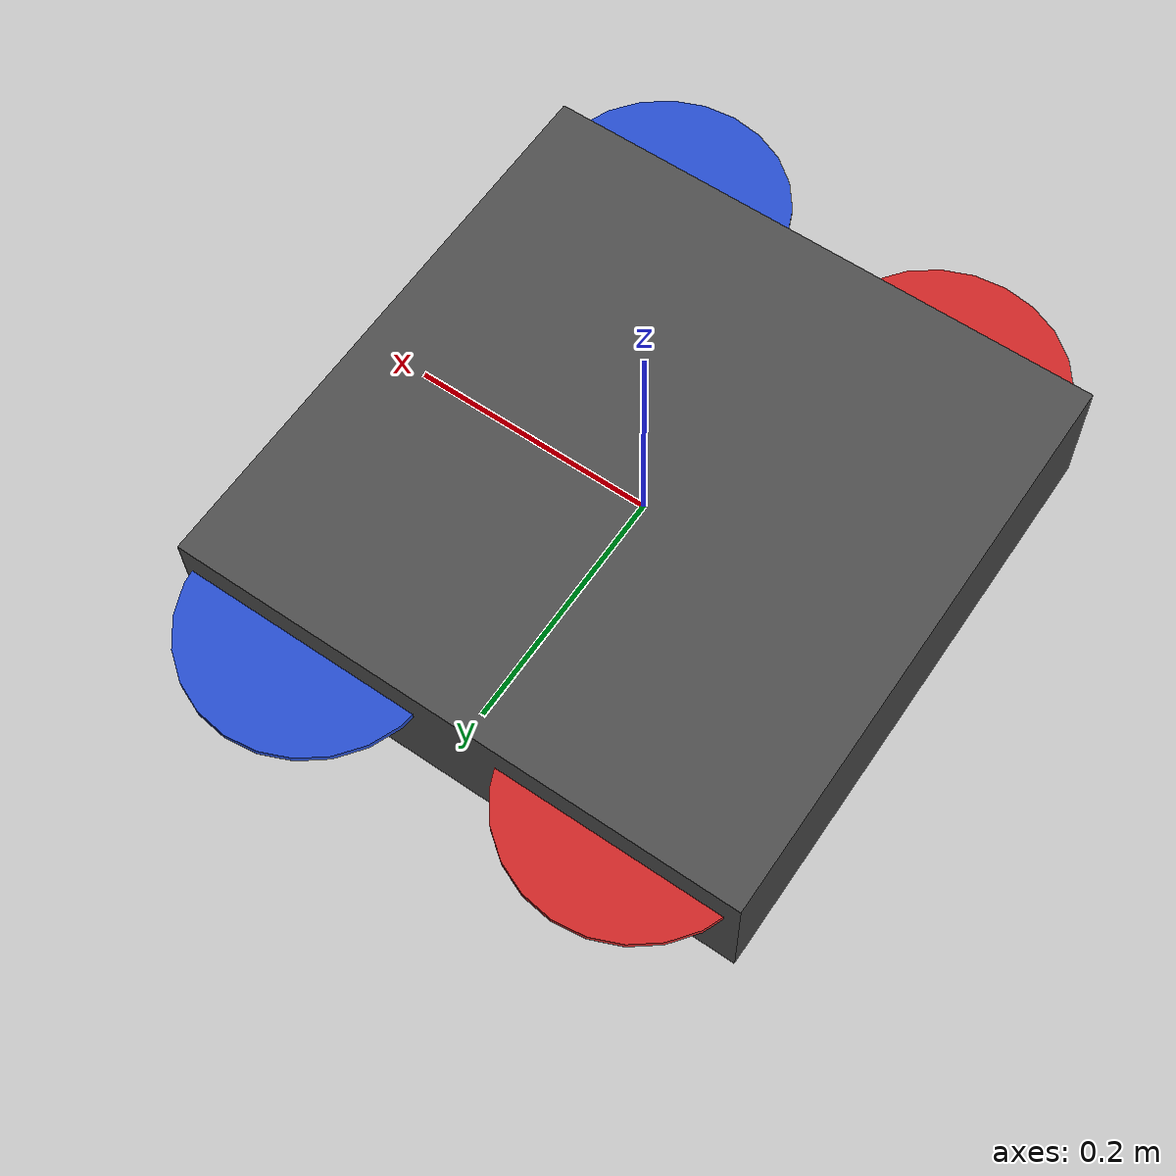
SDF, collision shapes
<sdf version='1.7'>
  <model name='iris'>
    <link name='/base_link'>
      <inertial>
        <pose>0 0 0 0 -0 0</pose>
        <mass>1.5</mass>
        <inertia>
          <ixx>0.029125</ixx>
          <ixy>0</ixy>
          <ixz>0</ixz>
          <iyy>0.029125</iyy>
          <iyz>0</iyz>
          <izz>0.055225</izz>
        </inertia>
      </inertial>
      <collision name='/base_link_inertia_collision'>
        <pose>0 0 0 0 -0 0</pose>
        <geometry>
          <box>
            <size>0.47 0.47 0.11</size>
          </box>
        </geometry>
        <surface>
          <contact>
            <ode/>
          </contact>
          <friction>
            <ode/>
          </friction>
        </surface>
      </collision>
      <visual name='/base_link_inertia_visual'>
        <pose>0 0 0 0 -0 0</pose>
        <geometry>
          <mesh>
            <scale>1 1 1</scale>
            <uri>/home2/arwillis/uncc_wind_control/ros_image/ros_ws/src/gazebo_blast3d/xacro/meshes/iris.dae</uri>
          </mesh>
        </geometry>
        <material>
          <script>
            <name>Gazebo/DarkGrey</name>
            <uri>file://media/materials/scripts/gazebo.material</uri>
          </script>
        </material>
      </visual>
    </link>
    <joint name='/rotor_0_joint' type='revolute'>
      <pose relative_to='/base_link'>0.13 -0.22 0.023 0 -0 0</pose>
      <parent>/base_link</parent>
      <child>/rotor_0</child>
      <axis>
        <xyz>0 0 1</xyz>
        <limit>
          <lower>-1e+16</lower>
          <upper>1e+16</upper>
        </limit>
        <dynamics>
          <spring_reference>0</spring_reference>
          <spring_stiffness>0</spring_stiffness>
        </dynamics>
      </axis>
    </joint>
    <link name='/rotor_0'>
      <pose relative_to='/rotor_0_joint'>0 0 0 0 -0 0</pose>
      <inertial>
        <pose>0 0 0 0 -0 0</pose>
        <mass>0.005</mass>
        <inertia>
          <ixx>9.75e-07</ixx>
          <ixy>0</ixy>
          <ixz>0</ixz>
          <iyy>0.000273104</iyy>
          <iyz>0</iyz>
          <izz>0.000278998</izz>
        </inertia>
      </inertial>
      <collision name='/rotor_0_collision'>
        <pose>0 0 0 0 -0 0</pose>
        <geometry>
          <cylinder>
            <length>0.005</length>
            <radius>0.1</radius>
          </cylinder>
        </geometry>
        <surface>
          <contact>
            <ode/>
          </contact>
          <friction>
            <ode/>
          </friction>
        </surface>
      </collision>
      <visual name='/rotor_0_visual'>
        <pose>0 0 0 0 -0 0</pose>
        <geometry>
          <mesh>
            <scale>0.1 0.1 0.1</scale>
            <uri>/home2/arwillis/uncc_wind_control/ros_image/ros_ws/src/gazebo_px4_drone/xacro/meshes/propeller_ccw.dae</uri>
          </mesh>
        </geometry>
        <material>
          <script>
            <name>Gazebo/Blue</name>
            <uri>file://media/materials/scripts/gazebo.material</uri>
          </script>
        </material>
      </visual>
    </link>
    <joint name='/rotor_1_joint' type='revolute'>
      <pose relative_to='/base_link'>-0.13 0.2 0.023 0 -0 0</pose>
      <parent>/base_link</parent>
      <child>/rotor_1</child>
      <axis>
        <xyz>0 0 1</xyz>
        <limit>
          <lower>-1e+16</lower>
          <upper>1e+16</upper>
        </limit>
        <dynamics>
          <spring_reference>0</spring_reference>
          <spring_stiffness>0</spring_stiffness>
        </dynamics>
      </axis>
    </joint>
    <link name='/rotor_1'>
      <pose relative_to='/rotor_1_joint'>0 0 0 0 -0 0</pose>
      <inertial>
        <pose>0 0 0 0 -0 0</pose>
        <mass>0.005</mass>
        <inertia>
          <ixx>9.75e-07</ixx>
          <ixy>0</ixy>
          <ixz>0</ixz>
          <iyy>0.000273104</iyy>
          <iyz>0</iyz>
          <izz>0.000278998</izz>
        </inertia>
      </inertial>
      <collision name='/rotor_1_collision'>
        <pose>0 0 0 0 -0 0</pose>
        <geometry>
          <cylinder>
            <length>0.005</length>
            <radius>0.1</radius>
          </cylinder>
        </geometry>
        <surface>
          <contact>
            <ode/>
          </contact>
          <friction>
            <ode/>
          </friction>
        </surface>
      </collision>
      <visual name='/rotor_1_visual'>
        <pose>0 0 0 0 -0 0</pose>
        <geometry>
          <mesh>
            <scale>0.1 0.1 0.1</scale>
            <uri>/home2/arwillis/uncc_wind_control/ros_image/ros_ws/src/gazebo_px4_drone/xacro/meshes/propeller_ccw.dae</uri>
          </mesh>
        </geometry>
        <material>
          <script>
            <name>Gazebo/Red</name>
            <uri>file://media/materials/scripts/gazebo.material</uri>
          </script>
        </material>
      </visual>
    </link>
    <joint name='/rotor_2_joint' type='revolute'>
      <pose relative_to='/base_link'>0.13 0.22 0.023 0 -0 0</pose>
      <parent>/base_link</parent>
      <child>/rotor_2</child>
      <axis>
        <xyz>0 0 1</xyz>
        <limit>
          <lower>-1e+16</lower>
          <upper>1e+16</upper>
        </limit>
        <dynamics>
          <spring_reference>0</spring_reference>
          <spring_stiffness>0</spring_stiffness>
        </dynamics>
      </axis>
    </joint>
    <link name='/rotor_2'>
      <pose relative_to='/rotor_2_joint'>0 0 0 0 -0 0</pose>
      <inertial>
        <pose>0 0 0 0 -0 0</pose>
        <mass>0.005</mass>
        <inertia>
          <ixx>9.75e-07</ixx>
          <ixy>0</ixy>
          <ixz>0</ixz>
          <iyy>0.000273104</iyy>
          <iyz>0</iyz>
          <izz>0.000278998</izz>
        </inertia>
      </inertial>
      <collision name='/rotor_2_collision'>
        <pose>0 0 0 0 -0 0</pose>
        <geometry>
          <cylinder>
            <length>0.005</length>
            <radius>0.1</radius>
          </cylinder>
        </geometry>
        <surface>
          <contact>
            <ode/>
          </contact>
          <friction>
            <ode/>
          </friction>
        </surface>
      </collision>
      <visual name='/rotor_2_visual'>
        <pose>0 0 0 0 -0 0</pose>
        <geometry>
          <mesh>
            <scale>0.1 0.1 0.1</scale>
            <uri>/home2/arwillis/uncc_wind_control/ros_image/ros_ws/src/gazebo_px4_drone/xacro/meshes/propeller_cw.dae</uri>
          </mesh>
        </geometry>
        <material>
          <script>
            <name>Gazebo/Blue</name>
            <uri>file://media/materials/scripts/gazebo.material</uri>
          </script>
        </material>
      </visual>
    </link>
    <joint name='/rotor_3_joint' type='revolute'>
      <pose relative_to='/base_link'>-0.13 -0.2 0.023 0 -0 0</pose>
      <parent>/base_link</parent>
      <child>/rotor_3</child>
      <axis>
        <xyz>0 0 1</xyz>
        <limit>
          <lower>-1e+16</lower>
          <upper>1e+16</upper>
        </limit>
        <dynamics>
          <spring_reference>0</spring_reference>
          <spring_stiffness>0</spring_stiffness>
        </dynamics>
      </axis>
    </joint>
    <link name='/rotor_3'>
      <pose relative_to='/rotor_3_joint'>0 0 0 0 -0 0</pose>
      <inertial>
        <pose>0 0 0 0 -0 0</pose>
        <mass>0.005</mass>
        <inertia>
          <ixx>9.75e-07</ixx>
          <ixy>0</ixy>
          <ixz>0</ixz>
          <iyy>0.000273104</iyy>
          <iyz>0</iyz>
          <izz>0.000278998</izz>
        </inertia>
      </inertial>
      <collision name='/rotor_3_collision'>
        <pose>0 0 0 0 -0 0</pose>
        <geometry>
          <cylinder>
            <length>0.005</length>
            <radius>0.1</radius>
          </cylinder>
        </geometry>
        <surface>
          <contact>
            <ode/>
          </contact>
          <friction>
            <ode/>
          </friction>
        </surface>
      </collision>
      <visual name='/rotor_3_visual'>
        <pose>0 0 0 0 -0 0</pose>
        <geometry>
          <mesh>
            <scale>0.1 0.1 0.1</scale>
            <uri>/home2/arwillis/uncc_wind_control/ros_image/ros_ws/src/gazebo_px4_drone/xacro/meshes/propeller_cw.dae</uri>
          </mesh>
        </geometry>
        <material>
          <script>
            <name>Gazebo/Red</name>
            <uri>file://media/materials/scripts/gazebo.material</uri>
          </script>
        </material>
      </visual>
    </link>
    <plugin name='multirotor_base_plugin' filename='libgazebo_multirotor_base_plugin.so'>
      <robotNamespace/>
      <linkName>/base_link</linkName>
      <rotorVelocitySlowdownSim>10</rotorVelocitySlowdownSim>
    </plugin>
    <plugin name='_front_right_motor_model' filename='libgazebo_motor_model.so'>
      <robotNamespace/>
      <jointName>/rotor_0_joint</jointName>
      <linkName>/rotor_0</linkName>
      <turningDirection>ccw</turningDirection>
      <timeConstantUp>0.0125</timeConstantUp>
      <timeConstantDown>0.025</timeConstantDown>
      <maxRotVelocity>1100</maxRotVelocity>
      <motorConstant>5.84e-06</motorConstant>
      <momentConstant>0.06</momentConstant>
      <commandSubTopic>/gazebo/command/motor_speed</commandSubTopic>
      <motorNumber>0</motorNumber>
      <rotorDragCoefficient>0.000175</rotorDragCoefficient>
      <rollingMomentCoefficient>1e-06</rollingMomentCoefficient>
      <motorSpeedPubTopic>motor_speed/0</motorSpeedPubTopic>
      <rotorVelocitySlowdownSim>10</rotorVelocitySlowdownSim>
    </plugin>
    <plugin name='_back_left_motor_model' filename='libgazebo_motor_model.so'>
      <robotNamespace/>
      <jointName>/rotor_1_joint</jointName>
      <linkName>/rotor_1</linkName>
      <turningDirection>ccw</turningDirection>
      <timeConstantUp>0.0125</timeConstantUp>
      <timeConstantDown>0.025</timeConstantDown>
      <maxRotVelocity>1100</maxRotVelocity>
      <motorConstant>5.84e-06</motorConstant>
      <momentConstant>0.06</momentConstant>
      <commandSubTopic>/gazebo/command/motor_speed</commandSubTopic>
      <motorNumber>1</motorNumber>
      <rotorDragCoefficient>0.000175</rotorDragCoefficient>
      <rollingMomentCoefficient>1e-06</rollingMomentCoefficient>
      <motorSpeedPubTopic>motor_speed/1</motorSpeedPubTopic>
      <rotorVelocitySlowdownSim>10</rotorVelocitySlowdownSim>
    </plugin>
    <plugin name='_front_left_motor_model' filename='libgazebo_motor_model.so'>
      <robotNamespace/>
      <jointName>/rotor_2_joint</jointName>
      <linkName>/rotor_2</linkName>
      <turningDirection>cw</turningDirection>
      <timeConstantUp>0.0125</timeConstantUp>
      <timeConstantDown>0.025</timeConstantDown>
      <maxRotVelocity>1100</maxRotVelocity>
      <motorConstant>5.84e-06</motorConstant>
      <momentConstant>0.06</momentConstant>
      <commandSubTopic>/gazebo/command/motor_speed</commandSubTopic>
      <motorNumber>2</motorNumber>
      <rotorDragCoefficient>0.000175</rotorDragCoefficient>
      <rollingMomentCoefficient>1e-06</rollingMomentCoefficient>
      <motorSpeedPubTopic>motor_speed/2</motorSpeedPubTopic>
      <rotorVelocitySlowdownSim>10</rotorVelocitySlowdownSim>
    </plugin>
    <plugin name='_back_right_motor_model' filename='libgazebo_motor_model.so'>
      <robotNamespace/>
      <jointName>/rotor_3_joint</jointName>
      <linkName>/rotor_3</linkName>
      <turningDirection>cw</turningDirection>
      <timeConstantUp>0.0125</timeConstantUp>
      <timeConstantDown>0.025</timeConstantDown>
      <maxRotVelocity>1100</maxRotVelocity>
      <motorConstant>5.84e-06</motorConstant>
      <momentConstant>0.06</momentConstant>
      <commandSubTopic>/gazebo/command/motor_speed</commandSubTopic>
      <motorNumber>3</motorNumber>
      <rotorDragCoefficient>0.000175</rotorDragCoefficient>
      <rollingMomentCoefficient>1e-06</rollingMomentCoefficient>
      <motorSpeedPubTopic>motor_speed/3</motorSpeedPubTopic>
      <rotorVelocitySlowdownSim>10</rotorVelocitySlowdownSim>
    </plugin>
    <link name='sensor_link'>
      <pose>0.09 0 -0.03 0 -0 0</pose>
      <inertial>
        <mass>1e-06</mass>
        <inertia>
          <ixx>1e-06</ixx>
          <ixy>0</ixy>
          <ixz>0</ixz>
          <iyy>1e-06</iyy>
          <iyz>0</iyz>
          <izz>1e-06</izz>
        </inertia>
      </inertial>
      <collision name='collision'>
        <geometry>
          <sphere>
            <radius>0.02</radius>
          </sphere>
        </geometry>
      </collision>
      <visual name='visual'>
        <geometry>
          <sphere>
            <radius>0.02</radius>
          </sphere>
        </geometry>
      </visual>
      <sensor name='ev_camera_1' type='camera'>
        <pose>0 0 0 0 -0 0</pose>
        <update_rate>5</update_rate>
        <always_on>1</always_on>
        <plugin name='event_camera_plugin' filename='libgazebo_blast3d_camera_plugin.so'>
          <blast3dVideoDataFolder>/home2/arwillis/uncc_wind_control/ros_image/ros_ws/src/gazebo_blast3d/datasets/video</blast3dVideoDataFolder>
          <blast3dImageTopic>event_image</blast3dImageTopic>
          <blast3dEventTopic>event_stream</blast3dEventTopic>
        </plugin>
      </sensor>
      <sensor name='microphone_1' type='sonar'>
        <pose>0 0 0 0 -0 0</pose>
        <update_rate>5</update_rate>
        <always_on>1</always_on>
        <plugin name='microphone_1_plugin' filename='libgazebo_blast3d_microphone_plugin.so'>
          <audioLinkTopic>audio</audioLinkTopic>
          <customAudioDataFolder>/home2/arwillis/uncc_wind_control/ros_image/ros_ws/src/gazebo_blast3d/datasets/audio</customAudioDataFolder>
        </plugin>
      </sensor>
    </link>
    <joint name='sensor_joint' type='fixed'>
      <child>sensor_link</child>
      <parent>/base_link</parent>
    </joint>
    <link name='/vis_body'>
      <inertial>
        <mass>1e-09</mass>
        <inertia>
          <ixx>1e-09</ixx>
          <ixy>0</ixy>
          <ixz>0</ixz>
          <iyy>1e-09</iyy>
          <iyz>0</iyz>
          <izz>1e-09</izz>
        </inertia>
        <pose>0 0 0 0 -0 0</pose>
      </inertial>
      <collision name='collision'>
        <geometry>
          <sphere>
            <radius>0.001</radius>
          </sphere>
        </geometry>
      </collision>
      <visual name='visual'>
        <geometry>
          <sphere>
            <radius>0.001</radius>
          </sphere>
        </geometry>
      </visual>
    </link>
    <joint name='/vis/base_joint' type='revolute'>
      <child>/vis_body</child>
      <parent>/base_link</parent>
      <axis>
        <xyz>1 0 0</xyz>
        <limit>
          <lower>0</lower>
          <upper>0</upper>
          <effort>0</effort>
          <velocity>0</velocity>
        </limit>
        <dynamics>
          <spring_reference>0</spring_reference>
          <spring_stiffness>0</spring_stiffness>
        </dynamics>
        <use_parent_model_frame>1</use_parent_model_frame>
      </axis>
    </joint>
    <static>0</static>
    <link name='/imu_link'>
      <pose>0 0 0.02 0 -0 0</pose>
      <inertial>
        <pose>0 0 0 0 -0 0</pose>
        <mass>0.015</mass>
        <inertia>
          <ixx>1e-05</ixx>
          <ixy>0</ixy>
          <ixz>0</ixz>
          <iyy>1e-05</iyy>
          <iyz>0</iyz>
          <izz>1e-05</izz>
        </inertia>
      </inertial>
    </link>
    <joint name='/imu_joint' type='revolute'>
      <child>/imu_link</child>
      <parent>/base_link</parent>
      <axis>
        <xyz>1 0 0</xyz>
        <limit>
          <lower>0</lower>
          <upper>0</upper>
          <effort>0</effort>
          <velocity>0</velocity>
        </limit>
        <dynamics>
          <spring_reference>0</spring_reference>
          <spring_stiffness>0</spring_stiffness>
        </dynamics>
        <use_parent_model_frame>1</use_parent_model_frame>
      </axis>
    </joint>
    <frame name='gps0::__model__' attached_to='gps0::link'>
      <pose relative_to='__model__'>0.05 0 0.04 0 -0 0</pose>
    </frame>
    <link name='gps0::link'>
      <pose relative_to='gps0::__model__'>0 0 0 0 -0 0</pose>
      <inertial>
        <pose>0 0 0 0 -0 0</pose>
        <mass>0.015</mass>
        <inertia>
          <ixx>1e-05</ixx>
          <ixy>0</ixy>
          <ixz>0</ixz>
          <iyy>1e-05</iyy>
          <iyz>0</iyz>
          <izz>1e-05</izz>
        </inertia>
      </inertial>
      <visual name='visual'>
        <geometry>
          <cylinder>
            <radius>0.01</radius>
            <length>0.002</length>
          </cylinder>
        </geometry>
        <material>
          <script>
            <name>Gazebo/Black</name>
            <uri>__default__</uri>
          </script>
        </material>
      </visual>
      <sensor name='gps' type='gps'>
        <pose>0 0 0 0 -0 0</pose>
        <update_rate>5</update_rate>
        <always_on>1</always_on>
        <visualize>0</visualize>
        <plugin name='gps_plugin' filename='libgazebo_gps_plugin.so'>
          <robotNamespace/>
          <gpsNoise>1</gpsNoise>
          <gpsXYRandomWalk>2.0</gpsXYRandomWalk>
          <gpsZRandomWalk>4.0</gpsZRandomWalk>
          <gpsXYNoiseDensity>2.0e-4</gpsXYNoiseDensity>
          <gpsZNoiseDensity>4.0e-4</gpsZNoiseDensity>
          <gpsVXYNoiseDensity>0.2</gpsVXYNoiseDensity>
          <gpsVZNoiseDensity>0.4</gpsVZNoiseDensity>
        </plugin>
      </sensor>
    </link>
    <joint name='gps0_joint' type='fixed'>
      <child>gps0::link</child>
      <parent>/base_link</parent>
    </joint>
    <plugin name='groundtruth_plugin' filename='libgazebo_groundtruth_plugin.so'>
      <robotNamespace/>
    </plugin>
    <plugin name='gazebo_blast3d_model_plugin' filename='libgazebo_blast3d_model_plugin.so'>
      <robotNamespace/>
      <frameId>world</frameId>
      <linkName>/base_link</linkName>
      <blast3dPressureDataFolder>/home2/arwillis/uncc_wind_control/ros_image/ros_ws/src/gazebo_blast3d/datasets/pressure</blast3dPressureDataFolder>
      <blast3dServerRegisterLinkTopic>/gazebo/default/blast3d_register_link</blast3dServerRegisterLinkTopic>
      <blast3dServerLinkTopic>/gazebo/default/blast3d</blast3dServerLinkTopic>
    </plugin>
    <plugin name='magnetometer_plugin' filename='libgazebo_magnetometer_plugin.so'>
      <robotNamespace/>
      <pubRate>100</pubRate>
      <noiseDensity>0.0004</noiseDensity>
      <randomWalk>6.4e-06</randomWalk>
      <biasCorrelationTime>600</biasCorrelationTime>
      <magTopic>/mag</magTopic>
    </plugin>
    <plugin name='barometer_plugin' filename='libgazebo_barometer_plugin.so'>
      <robotNamespace/>
      <pubRate>50</pubRate>
      <baroTopic>/baro</baroTopic>
      <baroDriftPaPerSec>0</baroDriftPaPerSec>
    </plugin>
    <plugin name='mavlink_interface' filename='libgazebo_mavlink_interface.so'>
      <robotNamespace/>
      <imuSubTopic>/imu</imuSubTopic>
      <magSubTopic>/mag</magSubTopic>
      <baroSubTopic>/baro</baroSubTopic>
      <mavlink_addr>INADDR_ANY</mavlink_addr>
      <mavlink_tcp_port>4560</mavlink_tcp_port>
      <mavlink_udp_port>14560</mavlink_udp_port>
      <serialEnabled>0</serialEnabled>
      <serialDevice>/dev/ttyACM0</serialDevice>
      <baudRate>921600</baudRate>
      <qgc_addr>INADDR_ANY</qgc_addr>
      <qgc_udp_port>14550</qgc_udp_port>
      <sdk_addr>INADDR_ANY</sdk_addr>
      <sdk_udp_port>14540</sdk_udp_port>
      <hil_mode>0</hil_mode>
      <hil_state_level>0</hil_state_level>
      <send_vision_estimation>0</send_vision_estimation>
      <send_odometry>1</send_odometry>
      <enable_lockstep>1</enable_lockstep>
      <use_tcp>1</use_tcp>
      <motorSpeedCommandPubTopic>/gazebo/command/motor_speed</motorSpeedCommandPubTopic>
      <control_channels>
        <channel name='rotor1'>
          <input_index>0</input_index>
          <input_offset>0</input_offset>
          <input_scaling>1000</input_scaling>
          <zero_position_disarmed>0</zero_position_disarmed>
          <zero_position_armed>100</zero_position_armed>
          <joint_control_type>velocity</joint_control_type>
        </channel>
        <channel name='rotor2'>
          <input_index>1</input_index>
          <input_offset>0</input_offset>
          <input_scaling>1000</input_scaling>
          <zero_position_disarmed>0</zero_position_disarmed>
          <zero_position_armed>100</zero_position_armed>
          <joint_control_type>velocity</joint_control_type>
        </channel>
        <channel name='rotor3'>
          <input_index>2</input_index>
          <input_offset>0</input_offset>
          <input_scaling>1000</input_scaling>
          <zero_position_disarmed>0</zero_position_disarmed>
          <zero_position_armed>100</zero_position_armed>
          <joint_control_type>velocity</joint_control_type>
        </channel>
        <channel name='rotor4'>
          <input_index>3</input_index>
          <input_offset>0</input_offset>
          <input_scaling>1000</input_scaling>
          <zero_position_disarmed>0</zero_position_disarmed>
          <zero_position_armed>100</zero_position_armed>
          <joint_control_type>velocity</joint_control_type>
        </channel>
        <channel name='rotor5'>
          <input_index>4</input_index>
          <input_offset>1</input_offset>
          <input_scaling>324.6</input_scaling>
          <zero_position_disarmed>0</zero_position_disarmed>
          <zero_position_armed>0</zero_position_armed>
          <joint_control_type>velocity</joint_control_type>
          <joint_control_pid>
            <p>0.1</p>
            <i>0</i>
            <d>0</d>
            <iMax>0.0</iMax>
            <iMin>0.0</iMin>
            <cmdMax>2</cmdMax>
            <cmdMin>-2</cmdMin>
          </joint_control_pid>
          <joint_name>zephyr_delta_wing::propeller_joint</joint_name>
        </channel>
        <channel name='rotor6'>
          <input_index>5</input_index>
          <input_offset>0</input_offset>
          <input_scaling>0.524</input_scaling>
          <zero_position_disarmed>0</zero_position_disarmed>
          <zero_position_armed>0</zero_position_armed>
          <joint_control_type>position</joint_control_type>
          <joint_name>zephyr_delta_wing::flap_left_joint</joint_name>
          <joint_control_pid>
            <p>10.0</p>
            <i>0</i>
            <d>0</d>
            <iMax>0</iMax>
            <iMin>0</iMin>
            <cmdMax>20</cmdMax>
            <cmdMin>-20</cmdMin>
          </joint_control_pid>
        </channel>
        <channel name='rotor7'>
          <input_index>6</input_index>
          <input_offset>0</input_offset>
          <input_scaling>0.524</input_scaling>
          <zero_position_disarmed>0</zero_position_disarmed>
          <zero_position_armed>0</zero_position_armed>
          <joint_control_type>position</joint_control_type>
          <joint_name>zephyr_delta_wing::flap_right_joint</joint_name>
          <joint_control_pid>
            <p>10.0</p>
            <i>0</i>
            <d>0</d>
            <iMax>0</iMax>
            <iMin>0</iMin>
            <cmdMax>20</cmdMax>
            <cmdMin>-20</cmdMin>
          </joint_control_pid>
        </channel>
        <channel name='rotor8'>
          <input_index>7</input_index>
          <input_offset>0</input_offset>
          <input_scaling>0.524</input_scaling>
          <zero_position_disarmed>0</zero_position_disarmed>
          <zero_position_armed>0</zero_position_armed>
          <joint_control_type>position</joint_control_type>
        </channel>
      </control_channels>
    </plugin>
    <plugin name='rotors_gazebo_imu_plugin' filename='libgazebo_imu_plugin.so'>
      <robotNamespace/>
      <linkName>/imu_link</linkName>
      <imuTopic>/imu</imuTopic>
      <gyroscopeNoiseDensity>0.00018665</gyroscopeNoiseDensity>
      <gyroscopeRandomWalk>3.8785e-05</gyroscopeRandomWalk>
      <gyroscopeBiasCorrelationTime>1000.0</gyroscopeBiasCorrelationTime>
      <gyroscopeTurnOnBiasSigma>0.0087</gyroscopeTurnOnBiasSigma>
      <accelerometerNoiseDensity>0.00186</accelerometerNoiseDensity>
      <accelerometerRandomWalk>0.006</accelerometerRandomWalk>
      <accelerometerBiasCorrelationTime>300.0</accelerometerBiasCorrelationTime>
      <accelerometerTurnOnBiasSigma>0.196</accelerometerTurnOnBiasSigma>
    </plugin>
    <frame name='/base_joint' attached_to='/base_link'>
      <pose>0 0 0 0 -0 0</pose>
    </frame>
    <frame name='/base_link_inertia' attached_to='/base_joint'/>
  </model>
</sdf>
